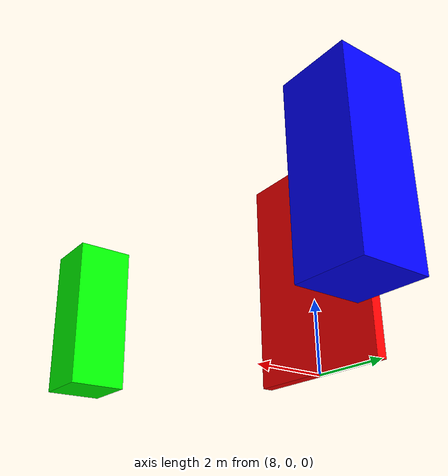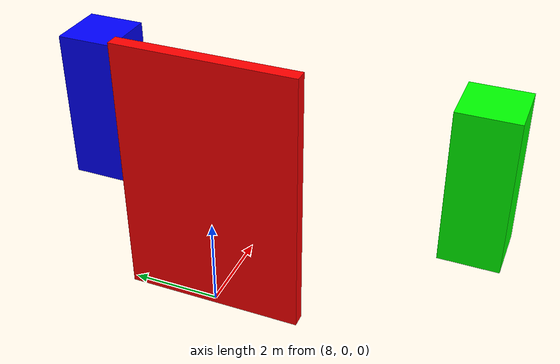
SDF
<?xml version="1.0" ?>
<sdf version="1.9">

  <model name="perception_test_targets">

    <static>true</static>

    <!-- Red wall: directly in front of the initial UAV pose  -->

    <link name="red_wall">

      <pose>
        8.0 0.0 3.0 0 0 0
      </pose>

      <visual name="red_wall_visual">

        <geometry>
          <box>
            <size>
              0.30 4.00 6.00
            </size>
          </box>
        </geometry>

        <material>

          <ambient>
            1.0 0.0 0.0 1.0
          </ambient>

          <diffuse>
            1.0 0.0 0.0 1.0
          </diffuse>

          <specular>
            0.2 0.2 0.2 1.0
          </specular>

        </material>

      </visual>

      <collision name="red_wall_collision">

        <geometry>
          <box>
            <size>
              0.30 4.00 6.00
            </size>
          </box>
        </geometry>

      </collision>

    </link>

    <!-- Green pillar: left / right visual reference           -->

    <link name="green_pillar">

      <pose>
        12.0 -5.0 2.0 0 0 0
      </pose>

      <visual name="green_pillar_visual">

        <geometry>
          <box>
            <size>
              1.50 1.50 4.00
            </size>
          </box>
        </geometry>

        <material>

          <ambient>
            0.0 1.0 0.0 1.0
          </ambient>

          <diffuse>
            0.0 1.0 0.0 1.0
          </diffuse>

        </material>

      </visual>

      <collision name="green_pillar_collision">

        <geometry>
          <box>
            <size>
              1.50 1.50 4.00
            </size>
          </box>
        </geometry>

      </collision>

    </link>

    <!-- Blue pillar                                           -->

    <link name="blue_pillar">

      <pose>
        12.0 5.0 2.0 0 0 0
      </pose>

      <visual name="blue_pillar_visual">

        <geometry>
          <box>
            <size>
              1.50 1.50 4.00
            </size>
          </box>
        </geometry>

        <material>

          <ambient>
            0.0 0.0 1.0 1.0
          </ambient>

          <diffuse>
            0.0 0.0 1.0 1.0
          </diffuse>

        </material>

      </visual>

      <collision name="blue_pillar_collision">

        <geometry>
          <box>
            <size>
              1.50 1.50 4.00
            </size>
          </box>
        </geometry>

      </collision>

    </link>

  </model>

</sdf>
